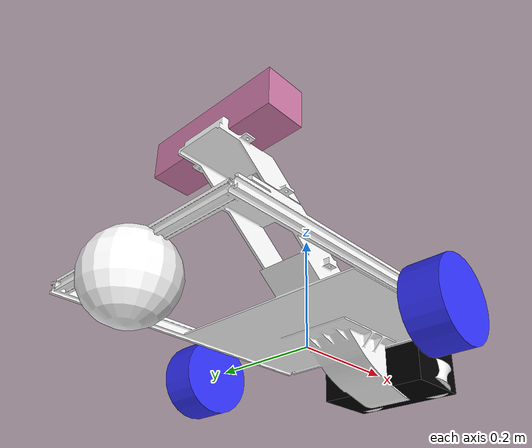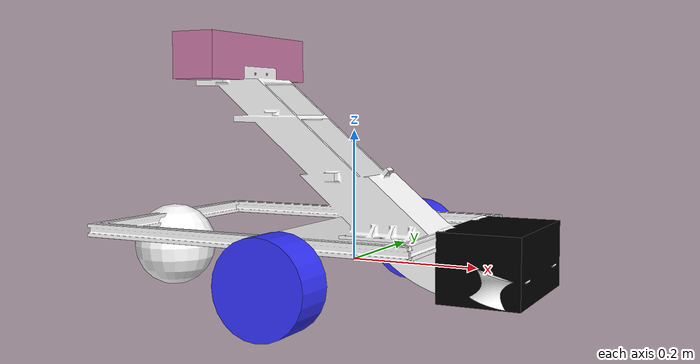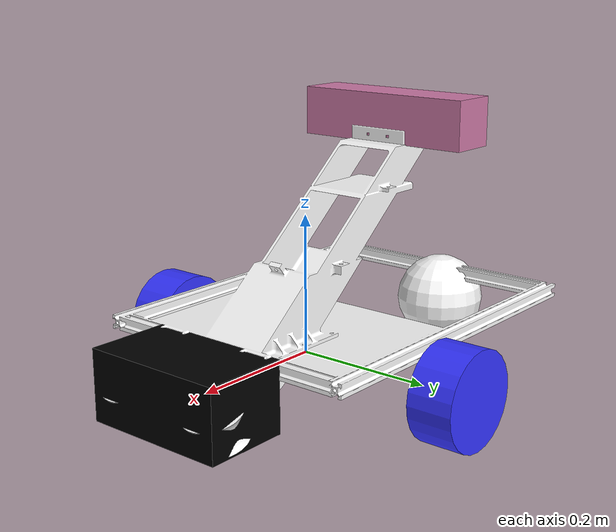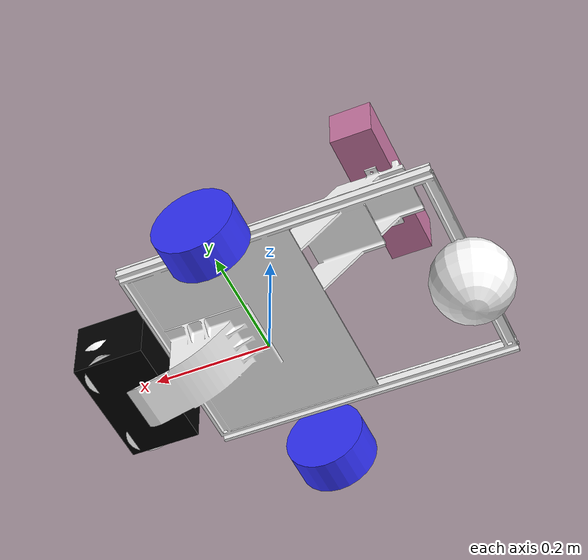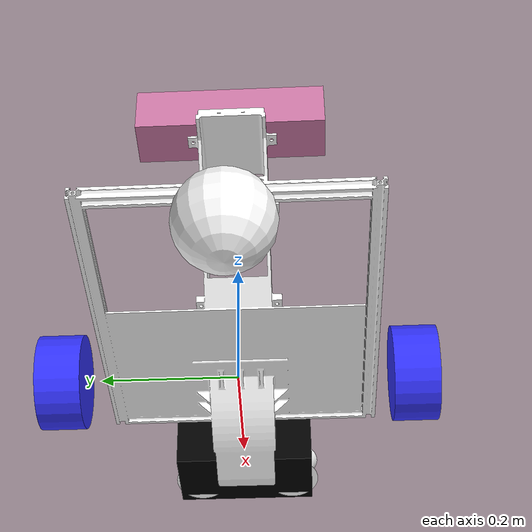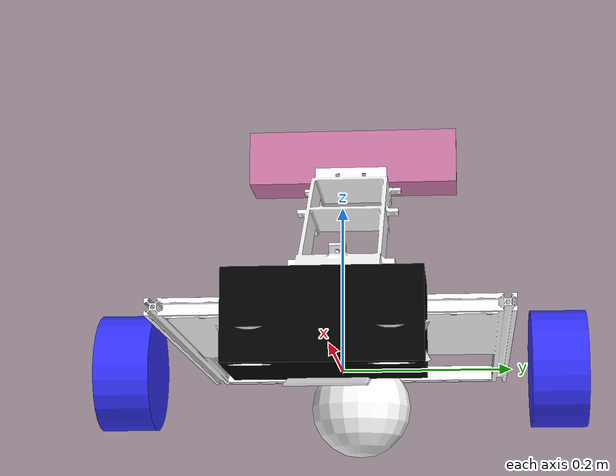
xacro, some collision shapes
<?xml version="1.0"?>
<robot xmlns:xacro="http://www.ros.org/wiki/xacro"  name="robot">

    <xacro:arg name="use_ros2_control" default="true"/>

    <xacro:include filename="trace_core.xacro" />
    <xacro:include filename = "depth_camera.xacro"/>

    <!-- Switch between ros2_control and Gazebo integrated diff-drive control -->
    <xacro:if value="$(arg use_ros2_control)">
        <xacro:include filename="ros2_control.xacro" />
    </xacro:if>
    <xacro:unless value="$(arg use_ros2_control)">
        <xacro:include filename="gazebo_control.xacro" />
    </xacro:unless>

</robot>

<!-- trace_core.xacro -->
<robot xmlns:xacro="http://www.ros.org/wiki/xacro">

    <xacro:include filename="inertial_macros.xacro"/>

    <material name="white">
        <color rgba="1 1 1 1" />
    </material>

    <material name="orange">
        <color rgba="1 0.3 0.1 1"/>
    </material>

    <material name="blue">
        <color rgba="0.2 0.2 1 1"/>
    </material>

    <material name="black">
        <color rgba="0 0 0 1"/>
    </material>

    <material name="red">
        <color rgba="1 0 0 1"/>
    </material>

    <!-- BASE LINK -->

    <link name = "base_link">

    </link>

    <!-- CHASSIS LINK -->

    <joint name = "chassis_joint" type = "fixed">
        <parent link = "base_link"/>
        <child link = "chassis_link"/>
        <origin xyz = "-0.345 0 0.035"/> <!-- We want the chassis link to sit at the edge of the chassis (100 cm behind the wheels)-->
    </joint>

    <!-- By default the visual of the link centers around the location of the joint
            so we offset its position in the origin tag to get it where we want it -->

    <link name = "chassis_link">
        <visual>
            <origin xyz = "0.26 -0.130 0.170"/>
            <geometry>
                <mesh filename="package://trace_description/meshes/chassis.stl" />
            </geometry>
            <material name = "white"/>
        </visual>

        <collision>
            <origin xyz = "0.26 0 0.0275"/>
            <geometry>
                <box size = "0.520 0.410 0.055"/>
            </geometry>
        </collision>

        <xacro:inertial_box mass="2.0" x="0.520" y="0.410" z="0.055">
            <origin xyz="0.26 0 0.0275" rpy="0 0 0"/>
        </xacro:inertial_box>
    </link>

    <!-- LEFT WHEEL LINK -->

    <!--By default cyliders are oriented along the x axis so we have to rotate them in the urdf so that they look right-->
    <!--Z axis of the wheels should also be pointing away from the robot-->

    <joint name = "left_wheel_joint" type = "continuous">
        <parent link = "base_link"/>
        <child link = "left_wheel_link"/>
        <origin xyz = "0 0.255 0" rpy = "-${pi/2} 0 0"/>
        <axis xyz = "0 0 1"/>
        <limit effort="0.05" velocity="10.0"/> <!-- Tag to limit torque and velocity within gazebo sim to make movement feel smooth-->
    </joint>

    <link name = "left_wheel_link">
        <visual>
            <geometry>
                <cylinder radius = "0.0691" length="0.065"/>
            </geometry>
            <material name = "blue"/>
        </visual>

        <collision>
            <geometry>
                <sphere radius = "0.0691"/>
            </geometry>
        </collision>

        <xacro:inertial_cylinder mass="0.1" length="0.065" radius="0.0691">
            <origin xyz="0 0 0" rpy="0 0 0"/>
        </xacro:inertial_cylinder>
    </link>

    <!-- RIGHT WHEEL LINK -->

    <joint name = "right_wheel_joint" type = "continuous">
        <parent link = "base_link"/>
        <child link = "right_wheel_link"/>
        <origin xyz = "0 -0.255 0" rpy = "${pi/2} 0 0"/>
        <axis xyz = "0 0 -1"/>
        <limit effort="0.05" velocity="10.0"/> <!-- Tag to limit torque and velocity within gazebo sim to make movement feel smooth-->
    </joint>

    <link name = "right_wheel_link">
        <visual>
            <geometry>
                <cylinder radius = "0.0691" length="0.065"/>
            </geometry>
            <material name = "blue"/>
        </visual>

        <collision>
            <geometry>
                <sphere radius = "0.0691"/>
            </geometry>
        </collision>

        <xacro:inertial_cylinder mass="0.1" length="0.065" radius="0.0691">
            <origin xyz="0 0 0" rpy="0 0 0"/>
        </xacro:inertial_cylinder>
    </link>

    <!-- CASTER WHEEL LINK -->

    <joint name = "caster_wheel_joint" type = "fixed">
        <parent link = "chassis_link" />
        <child link = "caster_wheel_link"/>
        <origin xyz = "0 0 -0.035"/>
    </joint>

    <link name ="caster_wheel_link">
        <visual>
            <geometry>
                <sphere radius = "0.0691"/>
            </geometry>
            <material name = "white"/>
        </visual>

        <collision>
            <geometry>
                <sphere radius = "0.0691"/>
            </geometry>
        </collision>

        <xacro:inertial_sphere mass="0.1" radius="0.0691">
            <origin xyz="0 0 0" rpy="0 0 0"/>
        </xacro:inertial_sphere>
    </link>

    <!-- BALL COLLECTION MECHANISM LINK -->

    <joint name = "ball_collection_mechanism_joint" type = "fixed">
        <parent link = "chassis_link" />
        <child link = "ball_collection_mechanism_link"/>
        <origin xyz = "0.580 0 -0.02"/>
    </joint>

    <link name ="ball_collection_mechanism_link">

        <visual>
            <geometry>
                <box size = "0.12 0.21 0.1"/>
            </geometry>
            <material name = "black"/>
        </visual>

        <collision>
            <origin xyz = "0 0 0"/>
            <geometry>
                <box size = "0.12 0.21 0.1"/>
            </geometry>
        </collision>

    </link>

    <!-- Gazebo tag to make the caster wheel frictionless-->
    <gazebo reference="caster_wheel_link">
        <mu1 value="0.0"/>
        <mu2 value="0.0"/>
    </gazebo>

</robot>

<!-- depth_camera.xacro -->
<robot xmlns:xacro="http://www.ros.org/wiki/xacro">

    <xacro:property name="mesh_path" value="file://$(find trace_description)/meshes"/>

    <joint name = "camera_joint" type="fixed">
        <parent link = "chassis_link"/>
        <child link = "camera_link"/>
        <origin xyz = "0.14 0 0.28" rpy = "0 0 0"/>
    </joint>

  <link name="camera_link">

    <inertial>
        <mass value="0.01" />
        <origin xyz="0 0 0" />
        <inertia ixx="0.001" ixy="0.0" ixz="0.0"
            iyy="0.001" iyz="0.0"
            izz="0.001" />
    </inertial>

    <visual>
        <origin xyz=" 0 0 0 " rpy="0 0 0" />
        <geometry>
            <mesh filename="package://trace_description/meshes/kinect.dae"/>
        </geometry>
    </visual>

    <collision>
        <origin xyz="0.0 0.0 0.0" rpy="0 0 0" />
        <geometry>
            <box size="0.0730 .2760 0.0720"/>
        </geometry>
    </collision>

  </link>

  <joint name="camera_depth_joint" type="fixed">
    <origin xyz="0 0.011 0" rpy="0 0 0" />
    <parent link="camera_link" />
    <child link="camera_depth_frame" />
  </joint>

  <link name="camera_depth_frame">
    <inertial>
      <mass value="0.01" />
      <origin xyz="0 0 0" />
      <inertia ixx="0.001" ixy="0.0" ixz="0.0"
        iyy="0.001" iyz="0.0"
        izz="0.001" />
    </inertial>
  </link>

  <joint name="camera_depth_optical_joint" type="fixed">
    <origin xyz="0 0 0" rpy="${-pi/2} 0 ${-pi/2}" />
    <parent link="camera_depth_frame" />
    <child link="camera_depth_optical_frame" />
  </joint>

  <link name="camera_depth_optical_frame">
    <inertial>
      <mass value="0.001" />
      <origin xyz="0 0 0" />
      <inertia ixx="0.0001" ixy="0.0" ixz="0.0"
        iyy="0.0001" iyz="0.0"
        izz="0.0001" />
    </inertial>
  </link>

  <joint name="camera_rgb_joint" type="fixed">
    <origin xyz="0 -0.012 0" rpy="0 0 0" />
    <parent link="camera_link" />
    <child link="camera_rgb_frame" />
  </joint>

  <link name="camera_rgb_frame">
    <inertial>
      <mass value="0.001" />
      <origin xyz="0 0 0" />
      <inertia ixx="0.0001" ixy="0.0" ixz="0.0"
        iyy="0.0001" iyz="0.0"
        izz="0.0001" />
    </inertial>
  </link>

  <joint name="camera_rgb_optical_joint" type="fixed">
    <origin xyz="0 0 0" rpy="${-pi/2} 0 ${-pi/2}" />
    <parent link="camera_rgb_frame" />
    <child link="camera_rgb_optical_frame" />
  </joint>

  <link name="camera_rgb_optical_frame">
    <inertial>
      <mass value="0.001" />
      <origin xyz="0 0 0" />
      <inertia ixx="0.0001" ixy="0.0" ixz="0.0"
        iyy="0.0001" iyz="0.0"
        izz="0.0001" />
    </inertial>
  </link>

</robot>
